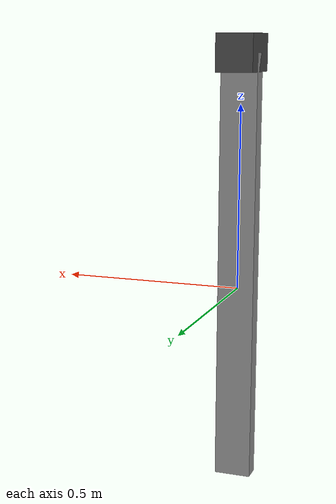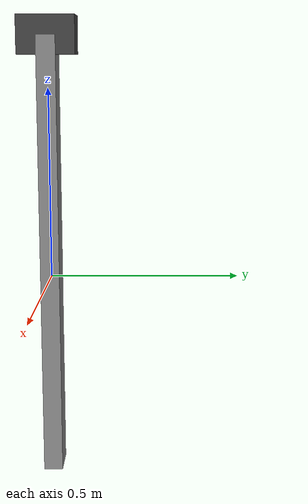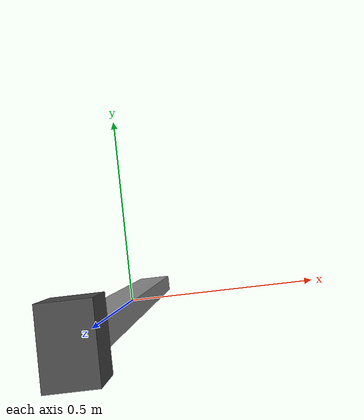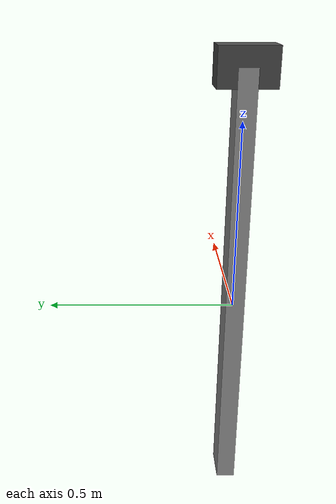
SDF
<?xml version="1.0"?>
<sdf version="1.7">
  <model name="tri_tars">
    <pose>0 0 0.635 0 0 0</pose>

    <link name="body">
      <pose>0 0 0 0 0 0</pose>
      <inertial>
        <mass>2.0</mass> <inertia>
          <ixx>0.00367</ixx> <ixy>0</ixy> <ixz>0</ixz>
          <iyy>0.00333</iyy> <iyz>0</iyz>
          <izz>0.00367</izz>
        </inertia>
        <pose>0 0 0 0 0 0</pose>
      </inertial>
      <collision name="body_collision">
        <geometry>
          <box><size>0.1 0.15 0.1</size></box> </geometry>
        </collision>
      <visual name="body_visual">
        <geometry>
          <box><size>0.1 0.15 0.1</size></box> </geometry>
        <material>
          <ambient>0.2 0.2 0.2 1</ambient>
          <diffuse>0.3 0.3 0.3 1</diffuse>
          <specular>0.1 0.1 0.1 1</specular>
        </material>
      </visual>
    </link>

    <link name="left_leg">
      <pose>0 0 -0.585 0 0 0</pose> <inertial>
        <mass>5.0</mass> <pose>0 0 0 0 0 0</pose>
        <inertia>
          <ixx>0.5714</ixx> <ixy>0</ixy> <ixz>0</ixz>
          <iyy>0.5745</iyy> <iyz>0</iyz>
          <izz>0.0052</izz>
        </inertia>
      </inertial>
      <collision name="left_leg_collision">
        <geometry>
          <box><size>0.1 0.05 1.17</size></box> </geometry>
         <surface>
          <friction>
            <ode>
              <mu>1.0</mu>  <mu2>1.0</mu2> </ode>
          </friction>
          <contact>
            <ode>
              <kp>1000000.0</kp> <kd>1.0</kd>       <max_vel>0.01</max_vel> <min_depth>0.001</min_depth> </ode>
          </contact>
        </surface>
      </collision>
      <visual name="left_leg_visual">
        <geometry>
          <box><size>0.1 0.05 1.17</size></box>
        </geometry>
        <material>
          <ambient>0.4 0.4 0.4 1</ambient>
          <diffuse>0.6 0.6 0.6 1</diffuse>
          <specular>0.1 0.1 0.1 1</specular>
        </material>
      </visual>
    </link>

    <link name="center_leg">
      <pose>0 0 -0.585 0 0 0</pose> <inertial>
        <mass>5.0</mass>
        <pose>0 0 0 0 0 0</pose>
        <inertia>
          <ixx>0.5714</ixx> <ixy>0</ixy> <ixz>0</ixz>
          <iyy>0.5745</iyy> <iyz>0</iyz>
          <izz>0.0052</izz>
        </inertia>
      </inertial>
      <collision name="center_leg_collision">
        <geometry>
          <box><size>0.1 0.05 1.17</size></box>
        </geometry>
         <surface> <friction><ode><mu>1.0</mu><mu2>1.0</mu2></ode></friction>
          <contact><ode><kp>1000000.0</kp><kd>1.0</kd><max_vel>0.01</max_vel><min_depth>0.001</min_depth></ode></contact>
        </surface>
      </collision>
      <visual name="center_leg_visual">
        <geometry>
          <box><size>0.1 0.05 1.17</size></box>
        </geometry>
        <material> <ambient>0.4 0.4 0.2 1</ambient>
          <diffuse>0.6 0.6 0.4 1</diffuse>
          <specular>0.1 0.1 0.1 1</specular>
        </material>
      </visual>
    </link>

    <link name="right_leg">
      <pose>0 0 -0.585 0 0 0</pose> <inertial>
        <mass>5.0</mass>
        <pose>0 0 0 0 0 0</pose>
        <inertia>
          <ixx>0.5714</ixx> <ixy>0</ixy> <ixz>0</ixz>
          <iyy>0.5745</iyy> <iyz>0</iyz>
          <izz>0.0052</izz>
        </inertia>
      </inertial>
      <collision name="right_leg_collision">
        <geometry>
          <box><size>0.1 0.05 1.17</size></box>
        </geometry>
         <surface> <friction><ode><mu>1.0</mu><mu2>1.0</mu2></ode></friction>
          <contact><ode><kp>1000000.0</kp><kd>1.0</kd><max_vel>0.01</max_vel><min_depth>0.001</min_depth></ode></contact>
        </surface>
      </collision>
      <visual name="right_leg_visual">
        <geometry>
          <box><size>0.1 0.05 1.17</size></box>
        </geometry>
        <material> <ambient>0.4 0.4 0.4 1</ambient>
          <diffuse>0.6 0.6 0.6 1</diffuse>
          <specular>0.1 0.1 0.1 1</specular>
        </material>
      </visual>
    </link>

    <joint name="body_left_leg_joint" type="revolute">
      <pose relative_to="body">0 0.05 0 0 0 0</pose> <parent>body</parent>
      <child>left_leg</child>
      <axis>
        <xyz>1 0 0</xyz> <limit>
          <lower>-1.57</lower> <upper>1.57</upper>  <effort>100</effort> <velocity>1.0</velocity> </limit>
        <dynamics>
          <damping>0.2</damping>
          <friction>0.1</friction>
        </dynamics>
      </axis>
       <physics> <ode> <provide_feedback>true</provide_feedback> </ode> </physics>
    </joint>

    <joint name="body_center_leg_joint" type="revolute">
      <pose relative_to="body">0 0 0 0 0 0</pose>
      <parent>body</parent>
      <child>center_leg</child>
      <axis>
        <xyz>0 1 0</xyz> <limit>
          <lower>-0.785</lower> <upper>0.785</upper>  <effort>100</effort>
          <velocity>1.0</velocity>
        </limit>
        <dynamics>
          <damping>0.2</damping>
          <friction>0.1</friction>
        </dynamics>
      </axis>
       <physics> <ode> <provide_feedback>true</provide_feedback> </ode> </physics>
    </joint>

    <joint name="body_right_leg_joint" type="revolute">
      <pose relative_to="body">0 -0.05 0 0 0 0</pose> <parent>body</parent>
      <child>right_leg</child>
      <axis>
        <xyz>1 0 0</xyz> <limit>
          <lower>-1.57</lower> <upper>1.57</upper>  <effort>100</effort>
          <velocity>1.0</velocity>
        </limit>
        <dynamics>
          <damping>0.2</damping>
          <friction>0.1</friction>
        </dynamics>
      </axis>
       <physics> <ode> <provide_feedback>true</provide_feedback> </ode> </physics>
    </joint>

    </model>
</sdf>
